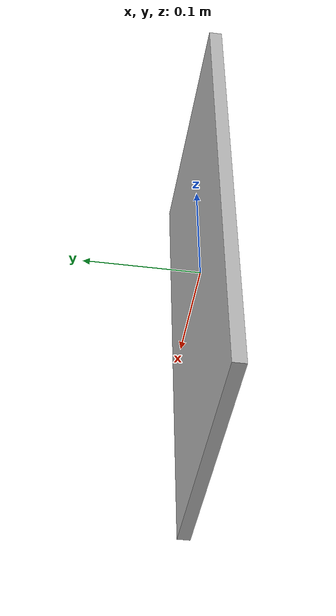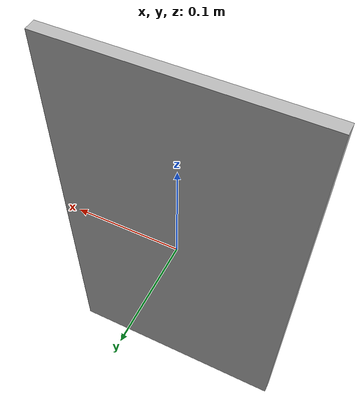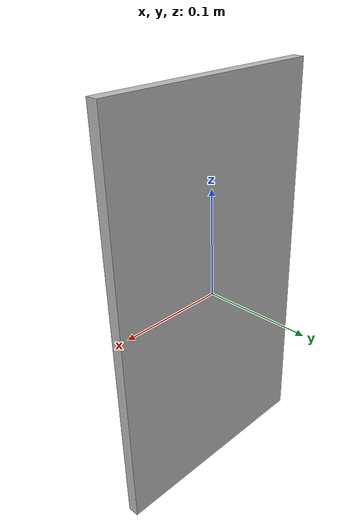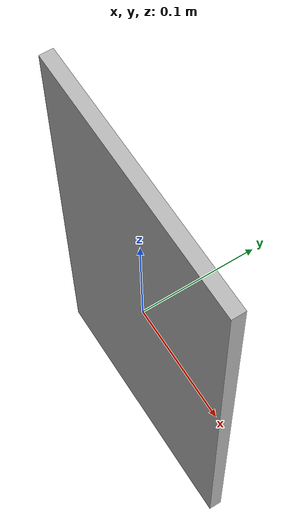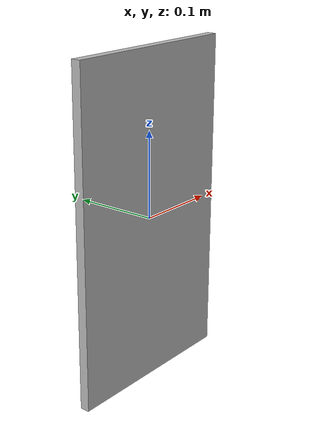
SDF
<?xml version="1.0" ?>
<sdf version="1.5">
  <model name="Horse">
    <static>true</static>
    <link name="link">
      <pose>0 0 0 0 0 0</pose>
      <collision name="collision">
        <geometry>
          <box>
            <size>.2232 0.011 .383</size>
          </box>
        </geometry>
      </collision>
      <visual name="visual">
        <cast_shadows>false</cast_shadows>
        <geometry>
          <box>
            <size>.2232 0.011 .383</size>
          </box>
        </geometry>
        <material>
          <script>
            <uri>model://Horse/materials/scripts</uri>
            <uri>model://Horse/materials/textures</uri>
            <name>vrc/Horse</name>
          </script>
        </material>
      </visual>
    </link>
  </model>
</sdf>
